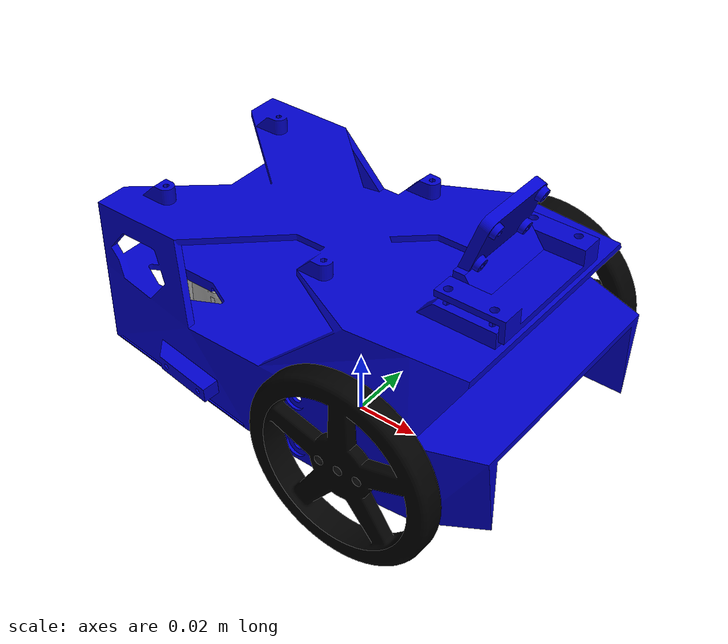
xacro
<?xml version="1.0"?>
<robot name="rusty" xmlns:xacro="http://www.ros.org/wiki/xacro">

  <xacro:arg name="sim_mode" default="true"/>

  <material name="silver"><color rgba="0.7 0.7 0.7 1.0"/></material>
  <material name="black"><color rgba="0.0 0.0 0.0 1.0"/></material>
  <material name="blue"><color rgba="0.0 0.0 0.8 1.0"/></material>

  <link name="base_footprint"/>

  <joint name="base_footprint_joint" type="fixed">
    <parent link="base_footprint"/>
    <child link="base_link"/>
    <origin xyz="0 0 0.032" rpy="0 0 0"/>
  </joint>

  <link name="base_link">
    <visual>
      <geometry>
        <mesh filename="package://rusty_description/meshes/base_link_visual.stl" />
      </geometry>
      <material name="blue"/>
    </visual>
    <collision>
      <origin xyz="0 0 0.015" rpy="0 0 0"/>
      <geometry>
        <box size="0.12 0.1 0.05" />
      </geometry>
    </collision>
    <inertial>
      <mass value="0.05" />
      <inertia ixx="0.000042" ixy="0" ixz="0.000001" iyy="0.000083" iyz="0" izz="0.000102" />
    </inertial>
  </link>

  <xacro:macro name="wheel_link" params="prefix y_reflect">
    <link name="${prefix}_wheel">
      <visual>
        <geometry>
          <mesh filename="package://rusty_description/meshes/${prefix}_wheel_visual.stl" />
        </geometry>
        <material name="black"/>
      </visual>
      <collision>
        <origin xyz="0 0 0" rpy="${pi/2} 0 0"/>
        <geometry>
          <cylinder radius="0.032" length="0.01"/>
        </geometry>
      </collision>
      <inertial>
        <mass value="0.01" />
        <inertia ixx="0.000002" ixy="0" ixz="0" iyy="0.000004" iyz="0" izz="0.000002" />
      </inertial>
    </link>

    <joint name="${prefix}_wheel_joint" type="continuous">
      <origin xyz="0.029641 ${0.05 * y_reflect} -0.003216" rpy="0 0 0" />
      <parent link="base_link" />
      <child link="${prefix}_wheel" />
      <axis xyz="0 1 0" />
    </joint>
  </xacro:macro>

  <xacro:wheel_link prefix="left" y_reflect="1" />
  <xacro:wheel_link prefix="right" y_reflect="-1" />

  <link name="caster_shroud_link">
    <visual>
      <geometry>
        <mesh filename="package://rusty_description/meshes/caster_shroud_link_visual.stl" />
      </geometry>
      <material name="silver"/>
    </visual>
    <inertial>
      <mass value="0.005" />
      <inertia ixx="0.000001" ixy="0" ixz="0" iyy="0.000001" iyz="0" izz="0.000001" />
    </inertial>
  </link>

  <joint name="caster_shroud_link_joint" type="fixed">
    <origin xyz="-0.0535 0.003633 -0.016" rpy="0 0 0" />
    <parent link="base_link" />
    <child link="caster_shroud_link" />
  </joint>

  <link name="caster_ball_link">
    <visual>
      <geometry><sphere radius="0.0128"/></geometry> <material name="black"/>
    </visual>
    <collision>
      <geometry><sphere radius="0.0128"/></geometry>
    </collision>
    <inertial>
      <mass value="0.005" />
      <inertia ixx="0.000001" ixy="0" ixz="0" iyy="0.000001" iyz="0" izz="0.000001" />
    </inertial>
  </link>

  <joint name="caster_ball_link_joint" type="fixed">
    <origin xyz="0 0 -0.0064" rpy="0 0 0" />
    <parent link="caster_shroud_link" />
    <child link="caster_ball_link" />
  </joint>

  <link name="camera_link">
    <visual>
      <geometry>
        <mesh filename="package://rusty_description/meshes/camera_link_visual.stl" />
      </geometry>
      <material name="blue"/>
    </visual>
    <collision>
       <geometry><sphere radius="0.0128"/></geometry>
    </collision>
    <inertial>
      <mass value="0.003" />
      <inertia ixx="0.000001" ixy="0" ixz="0" iyy="0" iyz="0" izz="0.000001" />
    </inertial>
  </link>

  <joint name="camera_joint" type="fixed">
    <origin xyz="0.04807 0.006009 0.042372" rpy="0 0 0" />
    <parent link="base_link" />
    <child link="camera_link" />
  </joint>

  <xacro:if value="$(arg sim_mode)">
    <ros2_control name="GazeboSimSystem" type="system">
      <hardware>
        <plugin>gz_ros2_control/GazeboSimSystem</plugin>
      </hardware>
      <joint name="left_wheel_joint">
        <command_interface name="velocity" />
        <state_interface name="velocity" />
      </joint>
      <joint name="right_wheel_joint">
        <command_interface name="velocity" />
        <state_interface name="velocity" />
      </joint>
    </ros2_control>
  </xacro:if>

  <xacro:unless value="$(arg sim_mode)">
    <ros2_control name="RealRobot" type="system">
      <hardware>
        <plugin>rusty_control/RustySystemHardware</plugin>
        <param name="pin_enable_0">8</param>
        <param name="pin_pos_0">9</param>
        <param name="pin_neg_0">10</param>
        <param name="pin_enable_1">13</param>
        <param name="pin_pos_1">12</param>
        <param name="pin_neg_1">11</param>
      </hardware>
      <joint name="left_wheel_joint">
        <command_interface name="velocity" />
        <state_interface name="velocity" />
      </joint>
      <joint name="right_wheel_joint">
        <command_interface name="velocity" />
        <state_interface name="velocity" />
      </joint>
    </ros2_control>
  </xacro:unless>

  <gazebo>
    <plugin name="gz_ros2_control::GazeboSimROS2ControlPlugin" filename="libgz_ros2_control-system.so">
      <parameters>$(find rusty_control)/config/controller.yaml</parameters>
    </plugin>
  </gazebo>

  <gazebo reference="caster_ball_link">
    <mu1 value="0.001"/>
    <mu2 value="0.001"/>
    <kp value="1000000.0" />
    <kd value="1.0" />
  </gazebo>

  <gazebo reference="camera_link">
    <sensor name="camera_sensor" type="camera">
      <pose>0.0 0 0.05 0 0.2617 0</pose>
      <visualize>true</visualize>
      <update_rate>30.0</update_rate>
      <topic>camera/image_raw</topic>
      <frame_id>camera_link</frame_id>
      <camera>
        <horizontal_fov>1.089</horizontal_fov>
        <image>
          <width>640</width><height>480</height><format>R8G8B8</format>
        </image>
        <clip><near>0.05</near><far>8.0</far></clip>
      </camera>
    </sensor>
  </gazebo>

</robot>
